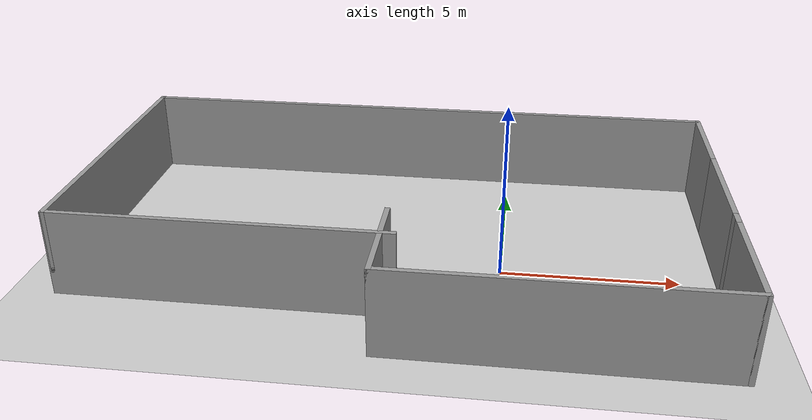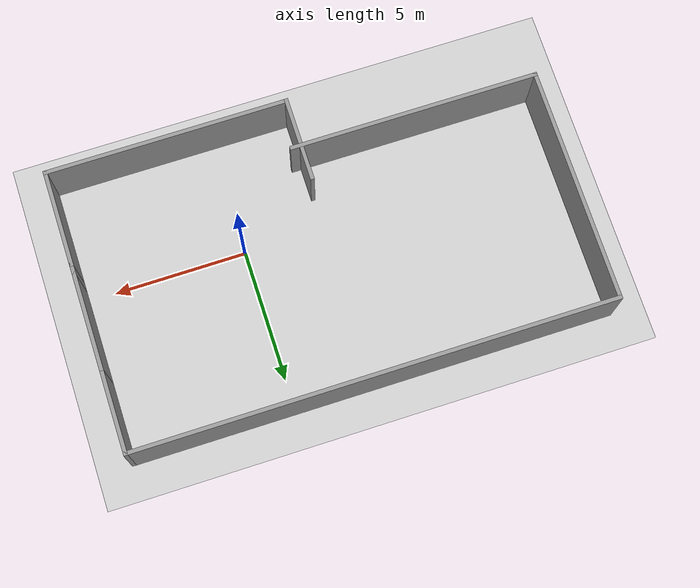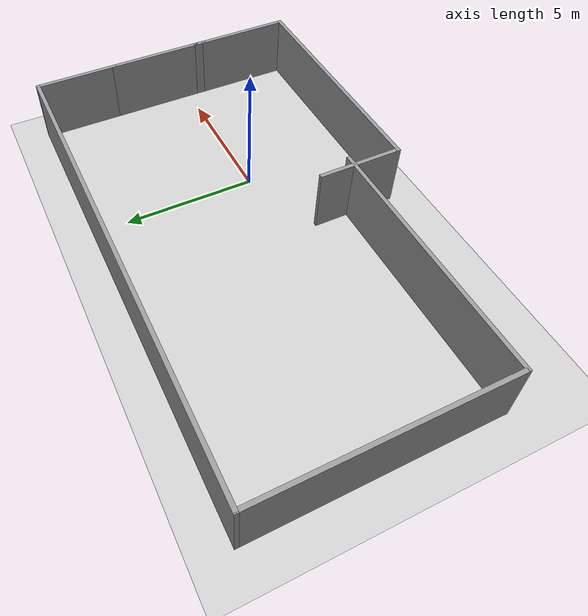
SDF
<sdf version="1.7">
 <world name="simple">
  <light name="sun" type="directional">
   <pose>0 0 10 0 -0 0</pose>
   <diffuse>0.8 0.8 0.8 1</diffuse>
   <specular>0.2 0.2 0.2 1</specular>
   <attenuation>
    <range>1000</range>
    <constant>0.9</constant>
    <linear>0.01</linear>
    <quadratic>0.001</quadratic>
   </attenuation>
   <direction>-0.5 0.1 -0.9</direction>
   <spot><inner_angle>0</inner_angle><outer_angle>0</outer_angle><falloff>0</falloff></spot>
  </light>
  <model name="ground_plane">
   <static>1</static>
   <link name="link">
    <collision name="collision">
     <geometry><plane><normal>0 0 1</normal><size>100 100</size></plane></geometry>
     <surface><friction><ode><mu>100</mu><mu2>50</mu2></ode></friction></surface>
    </collision>
    <visual name="visual">
     <cast_shadows>0</cast_shadows>
     <geometry><plane><normal>0 0 1</normal><size>100 100</size></plane></geometry>
     <material>
      <script><uri>file://media/materials/scripts/gazebo.material</uri><name>Gazebo/Grey</name></script>
     </material>
    </visual>
   </link>
  </model>
  <gravity>0 0 -9.8</gravity>
  <magnetic_field>6e-06 2.3e-05 -4.2e-05</magnetic_field>
  <atmosphere type="adiabatic"/>
  <physics type="ode">
   <max_step_size>0.001</max_step_size>
   <real_time_factor>1</real_time_factor>
   <real_time_update_rate>1000</real_time_update_rate>
  </physics>
  <scene><ambient>0.4 0.4 0.4 1</ambient><background>0.7 0.7 0.7 1</background><shadows>1</shadows></scene>
  <audio><device>default</device></audio>
  <spherical_coordinates>
   <surface_model>EARTH_WGS84</surface_model>
   <latitude_deg>43.5655</latitude_deg>
   <longitude_deg>1.474</longitude_deg>
   <elevation>150</elevation>
   <heading_deg>180</heading_deg>
  </spherical_coordinates>
  <model name="ww">
   <pose>-2.99 0.925 0 0 -0 0</pose>
   <link name="Wall_0">
    <collision name="Wall_0_Collision">
     <geometry><box><size>3.25 0.15 2.5</size></box></geometry>
     <pose>0 0 1.25 0 -0 0</pose>
    </collision>
    <visual name="Wall_0_Visual">
     <pose>0 0 1.25 0 -0 0</pose>
     <geometry><box><size>3.25 0.15 2.5</size></box></geometry>
     <material>
      <script><uri>file://media/materials/scripts/gazebo.material</uri><name>Gazebo/Grey</name></script>
      <ambient>1 1 1 1</ambient>
     </material>
     <meta><layer>0</layer></meta>
    </visual>
    <pose>-0.05 -3.775 0 0 -0 -1.5708</pose>
   </link>
   <link name="Wall_1">
    <collision name="Wall_1_Collision">
     <geometry><box><size>9.25 0.15 2.5</size></box></geometry>
     <pose>0 0 1.25 0 -0 0</pose>
    </collision>
    <visual name="Wall_1_Visual">
     <pose>0 0 1.25 0 -0 0</pose>
     <geometry><box><size>9.25 0.15 2.5</size></box></geometry>
     <material>
      <script><uri>file://media/materials/scripts/gazebo.material</uri><name>Gazebo/Grey</name></script>
      <ambient>1 1 1 1</ambient>
     </material>
     <meta><layer>0</layer></meta>
    </visual>
    <pose>4.5 -5.325 0 0 -0 0</pose>
   </link>
   <link name="Wall_2">
    <collision name="Wall_2_Collision">
     <geometry><box><size>3.75 0.15 2.5</size></box></geometry>
     <pose>0 0 1.25 0 -0 0</pose>
    </collision>
    <visual name="Wall_2_Visual">
     <pose>0 0 1.25 0 -0 0</pose>
     <geometry><box><size>3.75 0.15 2.5</size></box></geometry>
     <material>
      <script><uri>file://media/materials/scripts/gazebo.material</uri><name>Gazebo/Grey</name></script>
      <ambient>1 1 1 1</ambient>
     </material>
     <meta><layer>0</layer></meta>
    </visual>
    <pose>9.05 -3.525 0 0 -0 1.5708</pose>
   </link>
   <link name="Wall_3">
    <collision name="Wall_3_Collision">
     <geometry><box><size>0.5 0.15 2.5</size></box></geometry>
     <pose>0 0 1.25 0 -0 0</pose>
    </collision>
    <visual name="Wall_3_Visual">
     <pose>0 0 1.25 0 -0 0</pose>
     <geometry><box><size>0.5 0.15 2.5</size></box></geometry>
     <material>
      <script><uri>file://media/materials/scripts/gazebo.material</uri><name>Gazebo/Grey</name></script>
      <ambient>1 1 1 1</ambient>
     </material>
     <meta><layer>0</layer></meta>
    </visual>
    <pose>9.05 -1.55 0 0 -0 1.5708</pose>
   </link>
   <link name="Wall_4">
    <collision name="Wall_4_Collision">
     <geometry><box><size>3.75 0.15 2.5</size></box></geometry>
     <pose>0 0 1.25 0 -0 0</pose>
    </collision>
    <visual name="Wall_4_Visual">
     <pose>0 0 1.25 0 -0 0</pose>
     <geometry><box><size>3.75 0.15 2.5</size></box></geometry>
     <material>
      <script><uri>file://media/materials/scripts/gazebo.material</uri><name>Gazebo/Grey</name></script>
      <ambient>1 1 1 1</ambient>
     </material>
     <meta><layer>0</layer></meta>
    </visual>
    <pose>9.05 0.425 0 0 -0 1.5708</pose>
   </link>
   <link name="Wall_5">
    <collision name="Wall_5_Collision">
     <geometry><box><size>3.25 0.15 2.5</size></box></geometry>
     <pose>0 0 1.25 0 -0 0</pose>
    </collision>
    <visual name="Wall_5_Visual">
     <pose>0 0 1.25 0 -0 0</pose>
     <geometry><box><size>3.25 0.15 2.5</size></box></geometry>
     <material>
      <script><uri>file://media/materials/scripts/gazebo.material</uri><name>Gazebo/Grey</name></script>
      <ambient>1 1 1 1</ambient>
     </material>
     <meta><layer>0</layer></meta>
    </visual>
    <pose>9.05 3.775 0 0 -0 1.5708</pose>
   </link>
   <link name="Wall_6">
    <collision name="Wall_6_Collision">
     <geometry><box><size>18.25 0.15 2.5</size></box></geometry>
     <pose>0 0 1.25 0 -0 0</pose>
    </collision>
    <visual name="Wall_6_Visual">
     <pose>0 0 1.25 0 -0 0</pose>
     <geometry><box><size>18.25 0.15 2.5</size></box></geometry>
     <material>
      <script><uri>file://media/materials/scripts/gazebo.material</uri><name>Gazebo/Grey</name></script>
      <ambient>1 1 1 1</ambient>
     </material>
     <meta><layer>0</layer></meta>
    </visual>
    <pose>0 5.325 0 0 -0 3.14159</pose>
   </link>
   <link name="Wall_7">
    <collision name="Wall_7_Collision">
     <geometry><box><size>9 0.15 2.5</size></box></geometry>
     <pose>0 0 1.25 0 -0 0</pose>
    </collision>
    <visual name="Wall_7_Visual">
     <pose>0 0 1.25 0 -0 0</pose>
     <geometry><box><size>9 0.15 2.5</size></box></geometry>
     <material>
      <script><uri>file://media/materials/scripts/gazebo.material</uri><name>Gazebo/Grey</name></script>
      <ambient>1 1 1 1</ambient>
     </material>
     <meta><layer>0</layer></meta>
    </visual>
    <pose>-9.05 0.9 0 0 -0 -1.5708</pose>
   </link>
   <link name="Wall_8">
    <collision name="Wall_8_Collision">
     <geometry><box><size>9.5 0.15 2.5</size></box></geometry>
     <pose>0 0 1.25 0 -0 0</pose>
    </collision>
    <visual name="Wall_8_Visual">
     <pose>0 0 1.25 0 -0 0</pose>
     <geometry><box><size>9.5 0.15 2.5</size></box></geometry>
     <material>
      <script><uri>file://media/materials/scripts/gazebo.material</uri><name>Gazebo/Grey</name></script>
      <ambient>1 1 1 1</ambient>
     </material>
     <meta><layer>0</layer></meta>
    </visual>
    <pose>-4.375 -3.525 0 0 -0 0</pose>
   </link>
   <static>1</static>
  </model>
 </world>
</sdf>
